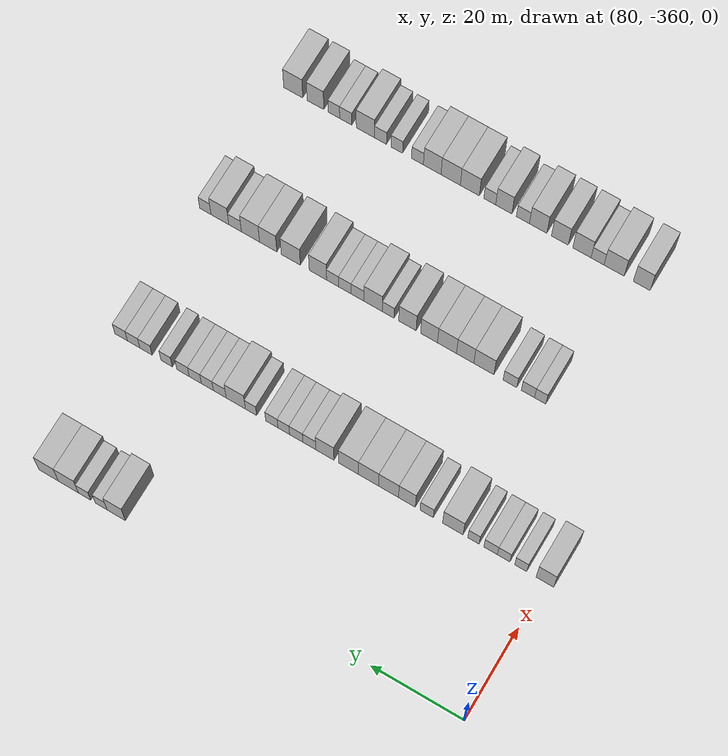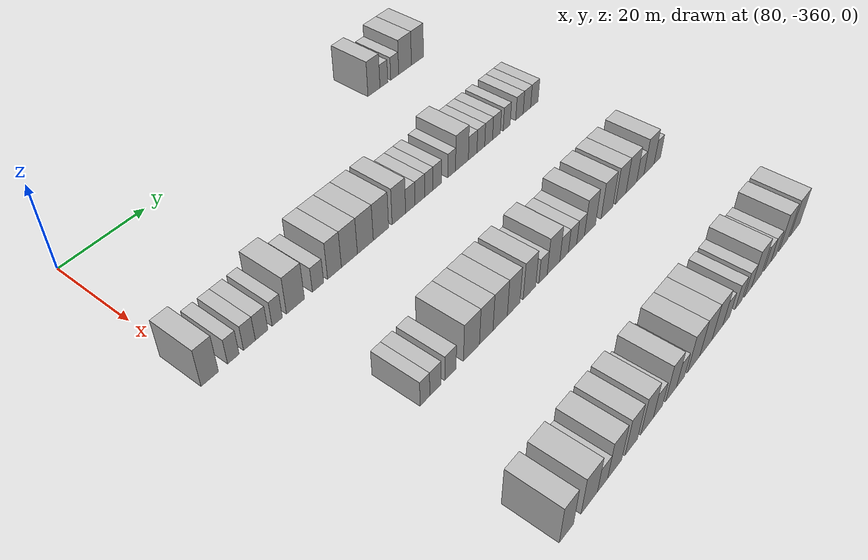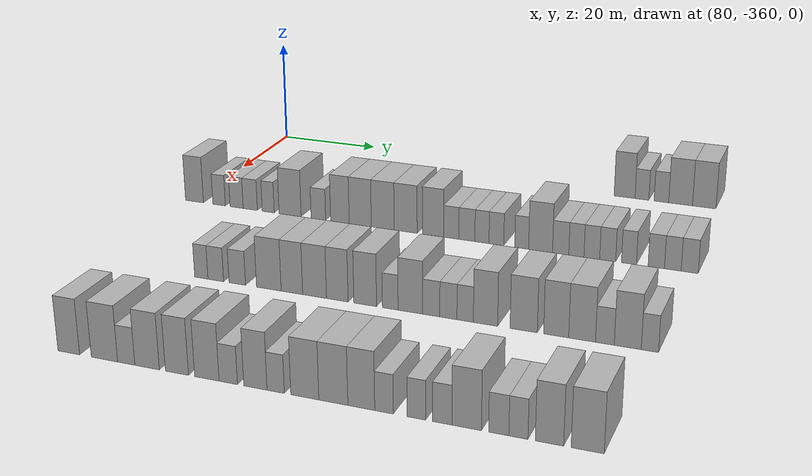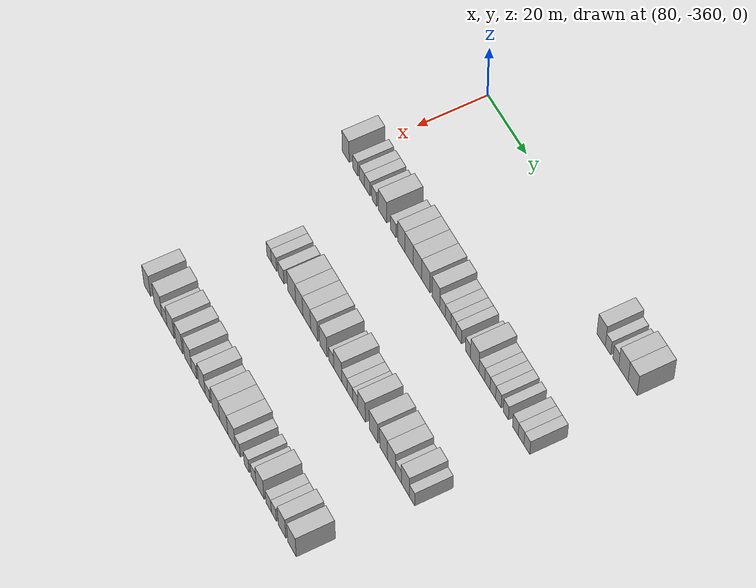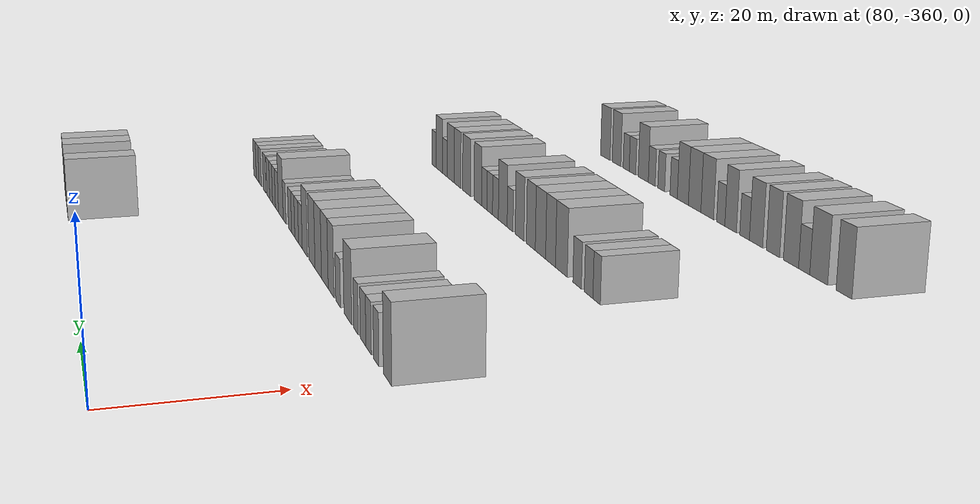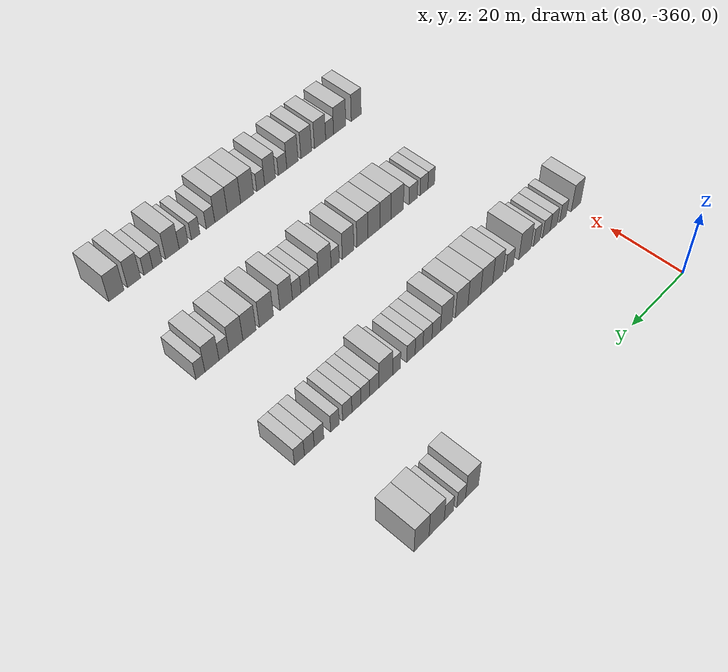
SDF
<sdf version="1.6">
 <world name="default">
  <model name="building_495">
   <static>1</static>
   <pose>85.0000 -284.6804 0 0.000000 0.000000 0.000000</pose>
   <link name="link">
    <pose>0 0 4.50 0 0 0</pose>
    <collision name="collision"><geometry><box><size>10.0000 4.0243 9.0000</size></box></geometry></collision>
    <visual name="visual">
     <cast_shadows>0</cast_shadows>
     <geometry><box><size>10.0000 4.0243 9.0000</size></box></geometry>
     <material>
      <script>
       <uri>model://HANNAS_wall/materials/scripts</uri>
       <uri>model://HANNAS_wall/materials/textures</uri>
       <name>vrc/HANNAS_wall</name>
      </script>
     </material>
    </visual>
   </link>
  </model>
  <model name="building_496">
   <static>1</static>
   <pose>85.0000 -281.3502 0 0.000000 0.000000 0.000000</pose>
   <link name="link">
    <pose>0 0 3.00 0 0 0</pose>
    <collision name="collision"><geometry><box><size>10.0000 2.6359 6.0000</size></box></geometry></collision>
    <visual name="visual">
     <cast_shadows>0</cast_shadows>
     <geometry><box><size>10.0000 2.6359 6.0000</size></box></geometry>
     <material>
      <script>
       <uri>model://HANNAS_wall/materials/scripts</uri>
       <uri>model://HANNAS_wall/materials/textures</uri>
       <name>vrc/HANNAS_wall</name>
      </script>
     </material>
    </visual>
   </link>
  </model>
  <model name="building_497">
   <static>1</static>
   <pose>85.0000 -277.6531 0 0.000000 0.000000 0.000000</pose>
   <link name="link">
    <pose>0 0 3.00 0 0 0</pose>
    <collision name="collision"><geometry><box><size>10.0000 2.7583 6.0000</size></box></geometry></collision>
    <visual name="visual">
     <cast_shadows>0</cast_shadows>
     <geometry><box><size>10.0000 2.7583 6.0000</size></box></geometry>
     <material>
      <script>
       <uri>model://HANNAS_wall/materials/scripts</uri>
       <uri>model://HANNAS_wall/materials/textures</uri>
       <name>vrc/HANNAS_wall</name>
      </script>
     </material>
    </visual>
   </link>
  </model>
  <model name="building_498">
   <static>1</static>
   <pose>85.0000 -274.0389 0 0.000000 0.000000 0.000000</pose>
   <link name="link">
    <pose>0 0 4.50 0 0 0</pose>
    <collision name="collision"><geometry><box><size>10.0000 4.4701 9.0000</size></box></geometry></collision>
    <visual name="visual">
     <cast_shadows>0</cast_shadows>
     <geometry><box><size>10.0000 4.4701 9.0000</size></box></geometry>
     <material>
      <script>
       <uri>model://HANNAS_wall/materials/scripts</uri>
       <uri>model://HANNAS_wall/materials/textures</uri>
       <name>vrc/HANNAS_wall</name>
      </script>
     </material>
    </visual>
   </link>
  </model>
  <model name="building_499">
   <static>1</static>
   <pose>85.0000 -269.6318 0 0.000000 0.000000 0.000000</pose>
   <link name="link">
    <pose>0 0 4.50 0 0 0</pose>
    <collision name="collision"><geometry><box><size>10.0000 4.3442 9.0000</size></box></geometry></collision>
    <visual name="visual">
     <cast_shadows>0</cast_shadows>
     <geometry><box><size>10.0000 4.3442 9.0000</size></box></geometry>
     <material>
      <script>
       <uri>model://HANNAS_wall/materials/scripts</uri>
       <uri>model://HANNAS_wall/materials/textures</uri>
       <name>vrc/HANNAS_wall</name>
      </script>
     </material>
    </visual>
   </link>
  </model>
  <model name="building_704">
   <static>1</static>
   <pose>115.0000 -359.9059 0 0.000000 0.000000 0.000000</pose>
   <link name="link">
    <pose>0 0 4.50 0 0 0</pose>
    <collision name="collision"><geometry><box><size>10.0000 3.7793 9.0000</size></box></geometry></collision>
    <visual name="visual">
     <cast_shadows>0</cast_shadows>
     <geometry><box><size>10.0000 3.7793 9.0000</size></box></geometry>
     <material>
      <script>
       <uri>model://HANNAS_wall/materials/scripts</uri>
       <uri>model://HANNAS_wall/materials/textures</uri>
       <name>vrc/HANNAS_wall</name>
      </script>
     </material>
    </visual>
   </link>
  </model>
  <model name="building_705">
   <static>1</static>
   <pose>115.0000 -354.7191 0 0.000000 0.000000 0.000000</pose>
   <link name="link">
    <pose>0 0 3.00 0 0 0</pose>
    <collision name="collision"><geometry><box><size>10.0000 2.5943 6.0000</size></box></geometry></collision>
    <visual name="visual">
     <cast_shadows>0</cast_shadows>
     <geometry><box><size>10.0000 2.5943 6.0000</size></box></geometry>
     <material>
      <script>
       <uri>model://HANNAS_wall/materials/scripts</uri>
       <uri>model://HANNAS_wall/materials/textures</uri>
       <name>vrc/HANNAS_wall</name>
      </script>
     </material>
    </visual>
   </link>
  </model>
  <model name="building_706">
   <static>1</static>
   <pose>115.0000 -351.0671 0 0.000000 0.000000 0.000000</pose>
   <link name="link">
    <pose>0 0 3.00 0 0 0</pose>
    <collision name="collision"><geometry><box><size>10.0000 2.7098 6.0000</size></box></geometry></collision>
    <visual name="visual">
     <cast_shadows>0</cast_shadows>
     <geometry><box><size>10.0000 2.7098 6.0000</size></box></geometry>
     <material>
      <script>
       <uri>model://HANNAS_wall/materials/scripts</uri>
       <uri>model://HANNAS_wall/materials/textures</uri>
       <name>vrc/HANNAS_wall</name>
      </script>
     </material>
    </visual>
   </link>
  </model>
  <model name="building_707">
   <static>1</static>
   <pose>115.0000 -348.2497 0 0.000000 0.000000 0.000000</pose>
   <link name="link">
    <pose>0 0 3.00 0 0 0</pose>
    <collision name="collision"><geometry><box><size>10.0000 2.9250 6.0000</size></box></geometry></collision>
    <visual name="visual">
     <cast_shadows>0</cast_shadows>
     <geometry><box><size>10.0000 2.9250 6.0000</size></box></geometry>
     <material>
      <script>
       <uri>model://HANNAS_wall/materials/scripts</uri>
       <uri>model://HANNAS_wall/materials/textures</uri>
       <name>vrc/HANNAS_wall</name>
      </script>
     </material>
    </visual>
   </link>
  </model>
  <model name="building_708">
   <static>1</static>
   <pose>115.0000 -344.5595 0 0.000000 0.000000 0.000000</pose>
   <link name="link">
    <pose>0 0 3.00 0 0 0</pose>
    <collision name="collision"><geometry><box><size>10.0000 2.4555 6.0000</size></box></geometry></collision>
    <visual name="visual">
     <cast_shadows>0</cast_shadows>
     <geometry><box><size>10.0000 2.4555 6.0000</size></box></geometry>
     <material>
      <script>
       <uri>model://HANNAS_wall/materials/scripts</uri>
       <uri>model://HANNAS_wall/materials/textures</uri>
       <name>vrc/HANNAS_wall</name>
      </script>
     </material>
    </visual>
   </link>
  </model>
  <model name="building_709">
   <static>1</static>
   <pose>115.0000 -340.1063 0 0.000000 0.000000 0.000000</pose>
   <link name="link">
    <pose>0 0 4.50 0 0 0</pose>
    <collision name="collision"><geometry><box><size>10.0000 4.4509 9.0000</size></box></geometry></collision>
    <visual name="visual">
     <cast_shadows>0</cast_shadows>
     <geometry><box><size>10.0000 4.4509 9.0000</size></box></geometry>
     <material>
      <script>
       <uri>model://HANNAS_wall/materials/scripts</uri>
       <uri>model://HANNAS_wall/materials/textures</uri>
       <name>vrc/HANNAS_wall</name>
      </script>
     </material>
    </visual>
   </link>
  </model>
  <model name="building_710">
   <static>1</static>
   <pose>115.0000 -334.4318 0 0.000000 0.000000 0.000000</pose>
   <link name="link">
    <pose>0 0 3.00 0 0 0</pose>
    <collision name="collision"><geometry><box><size>10.0000 2.8983 6.0000</size></box></geometry></collision>
    <visual name="visual">
     <cast_shadows>0</cast_shadows>
     <geometry><box><size>10.0000 2.8983 6.0000</size></box></geometry>
     <material>
      <script>
       <uri>model://HANNAS_wall/materials/scripts</uri>
       <uri>model://HANNAS_wall/materials/textures</uri>
       <name>vrc/HANNAS_wall</name>
      </script>
     </material>
    </visual>
   </link>
  </model>
  <model name="building_711">
   <static>1</static>
   <pose>115.0000 -330.1557 0 0.000000 0.000000 0.000000</pose>
   <link name="link">
    <pose>0 0 4.50 0 0 0</pose>
    <collision name="collision"><geometry><box><size>10.0000 3.6538 9.0000</size></box></geometry></collision>
    <visual name="visual">
     <cast_shadows>0</cast_shadows>
     <geometry><box><size>10.0000 3.6538 9.0000</size></box></geometry>
     <material>
      <script>
       <uri>model://HANNAS_wall/materials/scripts</uri>
       <uri>model://HANNAS_wall/materials/textures</uri>
       <name>vrc/HANNAS_wall</name>
      </script>
     </material>
    </visual>
   </link>
  </model>
  <model name="building_712">
   <static>1</static>
   <pose>115.0000 -326.1679 0 0.000000 0.000000 0.000000</pose>
   <link name="link">
    <pose>0 0 4.50 0 0 0</pose>
    <collision name="collision"><geometry><box><size>10.0000 4.3219 9.0000</size></box></geometry></collision>
    <visual name="visual">
     <cast_shadows>0</cast_shadows>
     <geometry><box><size>10.0000 4.3219 9.0000</size></box></geometry>
     <material>
      <script>
       <uri>model://HANNAS_wall/materials/scripts</uri>
       <uri>model://HANNAS_wall/materials/textures</uri>
       <name>vrc/HANNAS_wall</name>
      </script>
     </material>
    </visual>
   </link>
  </model>
  <model name="building_713">
   <static>1</static>
   <pose>115.0000 -321.7997 0 0.000000 0.000000 0.000000</pose>
   <link name="link">
    <pose>0 0 4.50 0 0 0</pose>
    <collision name="collision"><geometry><box><size>10.0000 4.4145 9.0000</size></box></geometry></collision>
    <visual name="visual">
     <cast_shadows>0</cast_shadows>
     <geometry><box><size>10.0000 4.4145 9.0000</size></box></geometry>
     <material>
      <script>
       <uri>model://HANNAS_wall/materials/scripts</uri>
       <uri>model://HANNAS_wall/materials/textures</uri>
       <name>vrc/HANNAS_wall</name>
      </script>
     </material>
    </visual>
   </link>
  </model>
  <model name="building_714">
   <static>1</static>
   <pose>115.0000 -317.4049 0 0.000000 0.000000 0.000000</pose>
   <link name="link">
    <pose>0 0 4.50 0 0 0</pose>
    <collision name="collision"><geometry><box><size>10.0000 4.3752 9.0000</size></box></geometry></collision>
    <visual name="visual">
     <cast_shadows>0</cast_shadows>
     <geometry><box><size>10.0000 4.3752 9.0000</size></box></geometry>
     <material>
      <script>
       <uri>model://HANNAS_wall/materials/scripts</uri>
       <uri>model://HANNAS_wall/materials/textures</uri>
       <name>vrc/HANNAS_wall</name>
      </script>
     </material>
    </visual>
   </link>
  </model>
  <model name="building_715">
   <static>1</static>
   <pose>115.0000 -312.2226 0 0.000000 0.000000 0.000000</pose>
   <link name="link">
    <pose>0 0 4.50 0 0 0</pose>
    <collision name="collision"><geometry><box><size>10.0000 3.9893 9.0000</size></box></geometry></collision>
    <visual name="visual">
     <cast_shadows>0</cast_shadows>
     <geometry><box><size>10.0000 3.9893 9.0000</size></box></geometry>
     <material>
      <script>
       <uri>model://HANNAS_wall/materials/scripts</uri>
       <uri>model://HANNAS_wall/materials/textures</uri>
       <name>vrc/HANNAS_wall</name>
      </script>
     </material>
    </visual>
   </link>
  </model>
  <model name="building_716">
   <static>1</static>
   <pose>115.0000 -308.8053 0 0.000000 0.000000 0.000000</pose>
   <link name="link">
    <pose>0 0 3.00 0 0 0</pose>
    <collision name="collision"><geometry><box><size>10.0000 2.8454 6.0000</size></box></geometry></collision>
    <visual name="visual">
     <cast_shadows>0</cast_shadows>
     <geometry><box><size>10.0000 2.8454 6.0000</size></box></geometry>
     <material>
      <script>
       <uri>model://HANNAS_wall/materials/scripts</uri>
       <uri>model://HANNAS_wall/materials/textures</uri>
       <name>vrc/HANNAS_wall</name>
      </script>
     </material>
    </visual>
   </link>
  </model>
  <model name="building_717">
   <static>1</static>
   <pose>115.0000 -305.8995 0 0.000000 0.000000 0.000000</pose>
   <link name="link">
    <pose>0 0 3.00 0 0 0</pose>
    <collision name="collision"><geometry><box><size>10.0000 2.9662 6.0000</size></box></geometry></collision>
    <visual name="visual">
     <cast_shadows>0</cast_shadows>
     <geometry><box><size>10.0000 2.9662 6.0000</size></box></geometry>
     <material>
      <script>
       <uri>model://HANNAS_wall/materials/scripts</uri>
       <uri>model://HANNAS_wall/materials/textures</uri>
       <name>vrc/HANNAS_wall</name>
      </script>
     </material>
    </visual>
   </link>
  </model>
  <model name="building_718">
   <static>1</static>
   <pose>115.0000 -303.1260 0 0.000000 0.000000 0.000000</pose>
   <link name="link">
    <pose>0 0 3.00 0 0 0</pose>
    <collision name="collision"><geometry><box><size>10.0000 2.5808 6.0000</size></box></geometry></collision>
    <visual name="visual">
     <cast_shadows>0</cast_shadows>
     <geometry><box><size>10.0000 2.5808 6.0000</size></box></geometry>
     <material>
      <script>
       <uri>model://HANNAS_wall/materials/scripts</uri>
       <uri>model://HANNAS_wall/materials/textures</uri>
       <name>vrc/HANNAS_wall</name>
      </script>
     </material>
    </visual>
   </link>
  </model>
  <model name="building_719">
   <static>1</static>
   <pose>115.0000 -300.4857 0 0.000000 0.000000 0.000000</pose>
   <link name="link">
    <pose>0 0 3.00 0 0 0</pose>
    <collision name="collision"><geometry><box><size>10.0000 2.6998 6.0000</size></box></geometry></collision>
    <visual name="visual">
     <cast_shadows>0</cast_shadows>
     <geometry><box><size>10.0000 2.6998 6.0000</size></box></geometry>
     <material>
      <script>
       <uri>model://HANNAS_wall/materials/scripts</uri>
       <uri>model://HANNAS_wall/materials/textures</uri>
       <name>vrc/HANNAS_wall</name>
      </script>
     </material>
    </visual>
   </link>
  </model>
  <model name="building_720">
   <static>1</static>
   <pose>115.0000 -295.8877 0 0.000000 0.000000 0.000000</pose>
   <link name="link">
    <pose>0 0 3.00 0 0 0</pose>
    <collision name="collision"><geometry><box><size>10.0000 2.4961 6.0000</size></box></geometry></collision>
    <visual name="visual">
     <cast_shadows>0</cast_shadows>
     <geometry><box><size>10.0000 2.4961 6.0000</size></box></geometry>
     <material>
      <script>
       <uri>model://HANNAS_wall/materials/scripts</uri>
       <uri>model://HANNAS_wall/materials/textures</uri>
       <name>vrc/HANNAS_wall</name>
      </script>
     </material>
    </visual>
   </link>
  </model>
  <model name="building_721">
   <static>1</static>
   <pose>115.0000 -292.5048 0 0.000000 0.000000 0.000000</pose>
   <link name="link">
    <pose>0 0 4.50 0 0 0</pose>
    <collision name="collision"><geometry><box><size>10.0000 4.2696 9.0000</size></box></geometry></collision>
    <visual name="visual">
     <cast_shadows>0</cast_shadows>
     <geometry><box><size>10.0000 4.2696 9.0000</size></box></geometry>
     <material>
      <script>
       <uri>model://HANNAS_wall/materials/scripts</uri>
       <uri>model://HANNAS_wall/materials/textures</uri>
       <name>vrc/HANNAS_wall</name>
      </script>
     </material>
    </visual>
   </link>
  </model>
  <model name="building_722">
   <static>1</static>
   <pose>115.0000 -288.9304 0 0.000000 0.000000 0.000000</pose>
   <link name="link">
    <pose>0 0 3.00 0 0 0</pose>
    <collision name="collision"><geometry><box><size>10.0000 2.8792 6.0000</size></box></geometry></collision>
    <visual name="visual">
     <cast_shadows>0</cast_shadows>
     <geometry><box><size>10.0000 2.8792 6.0000</size></box></geometry>
     <material>
      <script>
       <uri>model://HANNAS_wall/materials/scripts</uri>
       <uri>model://HANNAS_wall/materials/textures</uri>
       <name>vrc/HANNAS_wall</name>
      </script>
     </material>
    </visual>
   </link>
  </model>
  <model name="building_723">
   <static>1</static>
   <pose>115.0000 -286.1569 0 0.000000 0.000000 0.000000</pose>
   <link name="link">
    <pose>0 0 3.00 0 0 0</pose>
    <collision name="collision"><geometry><box><size>10.0000 2.6676 6.0000</size></box></geometry></collision>
    <visual name="visual">
     <cast_shadows>0</cast_shadows>
     <geometry><box><size>10.0000 2.6676 6.0000</size></box></geometry>
     <material>
      <script>
       <uri>model://HANNAS_wall/materials/scripts</uri>
       <uri>model://HANNAS_wall/materials/textures</uri>
       <name>vrc/HANNAS_wall</name>
      </script>
     </material>
    </visual>
   </link>
  </model>
  <model name="building_724">
   <static>1</static>
   <pose>115.0000 -283.4551 0 0.000000 0.000000 0.000000</pose>
   <link name="link">
    <pose>0 0 3.00 0 0 0</pose>
    <collision name="collision"><geometry><box><size>10.0000 2.7359 6.0000</size></box></geometry></collision>
    <visual name="visual">
     <cast_shadows>0</cast_shadows>
     <geometry><box><size>10.0000 2.7359 6.0000</size></box></geometry>
     <material>
      <script>
       <uri>model://HANNAS_wall/materials/scripts</uri>
       <uri>model://HANNAS_wall/materials/textures</uri>
       <name>vrc/HANNAS_wall</name>
      </script>
     </material>
    </visual>
   </link>
  </model>
  <model name="building_725">
   <static>1</static>
   <pose>115.0000 -280.7016 0 0.000000 0.000000 0.000000</pose>
   <link name="link">
    <pose>0 0 3.00 0 0 0</pose>
    <collision name="collision"><geometry><box><size>10.0000 2.7712 6.0000</size></box></geometry></collision>
    <visual name="visual">
     <cast_shadows>0</cast_shadows>
     <geometry><box><size>10.0000 2.7712 6.0000</size></box></geometry>
     <material>
      <script>
       <uri>model://HANNAS_wall/materials/scripts</uri>
       <uri>model://HANNAS_wall/materials/textures</uri>
       <name>vrc/HANNAS_wall</name>
      </script>
     </material>
    </visual>
   </link>
  </model>
  <model name="building_726">
   <static>1</static>
   <pose>115.0000 -277.0410 0 0.000000 0.000000 0.000000</pose>
   <link name="link">
    <pose>0 0 3.00 0 0 0</pose>
    <collision name="collision"><geometry><box><size>10.0000 2.5501 6.0000</size></box></geometry></collision>
    <visual name="visual">
     <cast_shadows>0</cast_shadows>
     <geometry><box><size>10.0000 2.5501 6.0000</size></box></geometry>
     <material>
      <script>
       <uri>model://HANNAS_wall/materials/scripts</uri>
       <uri>model://HANNAS_wall/materials/textures</uri>
       <name>vrc/HANNAS_wall</name>
      </script>
     </material>
    </visual>
   </link>
  </model>
  <model name="building_727">
   <static>1</static>
   <pose>115.0000 -272.3829 0 0.000000 0.000000 0.000000</pose>
   <link name="link">
    <pose>0 0 3.00 0 0 0</pose>
    <collision name="collision"><geometry><box><size>10.0000 2.7660 6.0000</size></box></geometry></collision>
    <visual name="visual">
     <cast_shadows>0</cast_shadows>
     <geometry><box><size>10.0000 2.7660 6.0000</size></box></geometry>
     <material>
      <script>
       <uri>model://HANNAS_wall/materials/scripts</uri>
       <uri>model://HANNAS_wall/materials/textures</uri>
       <name>vrc/HANNAS_wall</name>
      </script>
     </material>
    </visual>
   </link>
  </model>
  <model name="building_728">
   <static>1</static>
   <pose>115.0000 -269.5935 0 0.000000 0.000000 0.000000</pose>
   <link name="link">
    <pose>0 0 3.00 0 0 0</pose>
    <collision name="collision"><geometry><box><size>10.0000 2.8128 6.0000</size></box></geometry></collision>
    <visual name="visual">
     <cast_shadows>0</cast_shadows>
     <geometry><box><size>10.0000 2.8128 6.0000</size></box></geometry>
     <material>
      <script>
       <uri>model://HANNAS_wall/materials/scripts</uri>
       <uri>model://HANNAS_wall/materials/textures</uri>
       <name>vrc/HANNAS_wall</name>
      </script>
     </material>
    </visual>
   </link>
  </model>
  <model name="building_729">
   <static>1</static>
   <pose>115.0000 -266.7671 0 0.000000 0.000000 0.000000</pose>
   <link name="link">
    <pose>0 0 3.00 0 0 0</pose>
    <collision name="collision"><geometry><box><size>10.0000 2.8401 6.0000</size></box></geometry></collision>
    <visual name="visual">
     <cast_shadows>0</cast_shadows>
     <geometry><box><size>10.0000 2.8401 6.0000</size></box></geometry>
     <material>
      <script>
       <uri>model://HANNAS_wall/materials/scripts</uri>
       <uri>model://HANNAS_wall/materials/textures</uri>
       <name>vrc/HANNAS_wall</name>
      </script>
     </material>
    </visual>
   </link>
  </model>
  <model name="building_944">
   <static>1</static>
   <pose>145.0000 -341.8268 0 0.000000 0.000000 0.000000</pose>
   <link name="link">
    <pose>0 0 3.00 0 0 0</pose>
    <collision name="collision"><geometry><box><size>10.0000 2.4540 6.0000</size></box></geometry></collision>
    <visual name="visual">
     <cast_shadows>0</cast_shadows>
     <geometry><box><size>10.0000 2.4540 6.0000</size></box></geometry>
     <material>
      <script>
       <uri>model://HANNAS_wall/materials/scripts</uri>
       <uri>model://HANNAS_wall/materials/textures</uri>
       <name>vrc/HANNAS_wall</name>
      </script>
     </material>
    </visual>
   </link>
  </model>
  <model name="building_945">
   <static>1</static>
   <pose>145.0000 -339.1513 0 0.000000 0.000000 0.000000</pose>
   <link name="link">
    <pose>0 0 3.00 0 0 0</pose>
    <collision name="collision"><geometry><box><size>10.0000 2.8970 6.0000</size></box></geometry></collision>
    <visual name="visual">
     <cast_shadows>0</cast_shadows>
     <geometry><box><size>10.0000 2.8970 6.0000</size></box></geometry>
     <material>
      <script>
       <uri>model://HANNAS_wall/materials/scripts</uri>
       <uri>model://HANNAS_wall/materials/textures</uri>
       <name>vrc/HANNAS_wall</name>
      </script>
     </material>
    </visual>
   </link>
  </model>
  <model name="building_946">
   <static>1</static>
   <pose>145.0000 -335.2034 0 0.000000 0.000000 0.000000</pose>
   <link name="link">
    <pose>0 0 3.00 0 0 0</pose>
    <collision name="collision"><geometry><box><size>10.0000 2.9986 6.0000</size></box></geometry></collision>
    <visual name="visual">
     <cast_shadows>0</cast_shadows>
     <geometry><box><size>10.0000 2.9986 6.0000</size></box></geometry>
     <material>
      <script>
       <uri>model://HANNAS_wall/materials/scripts</uri>
       <uri>model://HANNAS_wall/materials/textures</uri>
       <name>vrc/HANNAS_wall</name>
      </script>
     </material>
    </visual>
   </link>
  </model>
  <model name="building_947">
   <static>1</static>
   <pose>145.0000 -329.4924 0 0.000000 0.000000 0.000000</pose>
   <link name="link">
    <pose>0 0 4.50 0 0 0</pose>
    <collision name="collision"><geometry><box><size>10.0000 4.4235 9.0000</size></box></geometry></collision>
    <visual name="visual">
     <cast_shadows>0</cast_shadows>
     <geometry><box><size>10.0000 4.4235 9.0000</size></box></geometry>
     <material>
      <script>
       <uri>model://HANNAS_wall/materials/scripts</uri>
       <uri>model://HANNAS_wall/materials/textures</uri>
       <name>vrc/HANNAS_wall</name>
      </script>
     </material>
    </visual>
   </link>
  </model>
  <model name="building_948">
   <static>1</static>
   <pose>145.0000 -325.3663 0 0.000000 0.000000 0.000000</pose>
   <link name="link">
    <pose>0 0 4.50 0 0 0</pose>
    <collision name="collision"><geometry><box><size>10.0000 3.8286 9.0000</size></box></geometry></collision>
    <visual name="visual">
     <cast_shadows>0</cast_shadows>
     <geometry><box><size>10.0000 3.8286 9.0000</size></box></geometry>
     <material>
      <script>
       <uri>model://HANNAS_wall/materials/scripts</uri>
       <uri>model://HANNAS_wall/materials/textures</uri>
       <name>vrc/HANNAS_wall</name>
      </script>
     </material>
    </visual>
   </link>
  </model>
  <model name="building_949">
   <static>1</static>
   <pose>145.0000 -321.3636 0 0.000000 0.000000 0.000000</pose>
   <link name="link">
    <pose>0 0 4.50 0 0 0</pose>
    <collision name="collision"><geometry><box><size>10.0000 4.1767 9.0000</size></box></geometry></collision>
    <visual name="visual">
     <cast_shadows>0</cast_shadows>
     <geometry><box><size>10.0000 4.1767 9.0000</size></box></geometry>
     <material>
      <script>
       <uri>model://HANNAS_wall/materials/scripts</uri>
       <uri>model://HANNAS_wall/materials/textures</uri>
       <name>vrc/HANNAS_wall</name>
      </script>
     </material>
    </visual>
   </link>
  </model>
  <model name="building_950">
   <static>1</static>
   <pose>145.0000 -317.3990 0 0.000000 0.000000 0.000000</pose>
   <link name="link">
    <pose>0 0 4.50 0 0 0</pose>
    <collision name="collision"><geometry><box><size>10.0000 3.7527 9.0000</size></box></geometry></collision>
    <visual name="visual">
     <cast_shadows>0</cast_shadows>
     <geometry><box><size>10.0000 3.7527 9.0000</size></box></geometry>
     <material>
      <script>
       <uri>model://HANNAS_wall/materials/scripts</uri>
       <uri>model://HANNAS_wall/materials/textures</uri>
       <name>vrc/HANNAS_wall</name>
      </script>
     </material>
    </visual>
   </link>
  </model>
  <model name="building_951">
   <static>1</static>
   <pose>145.0000 -312.5853 0 0.000000 0.000000 0.000000</pose>
   <link name="link">
    <pose>0 0 4.50 0 0 0</pose>
    <collision name="collision"><geometry><box><size>10.0000 3.8747 9.0000</size></box></geometry></collision>
    <visual name="visual">
     <cast_shadows>0</cast_shadows>
     <geometry><box><size>10.0000 3.8747 9.0000</size></box></geometry>
     <material>
      <script>
       <uri>model://HANNAS_wall/materials/scripts</uri>
       <uri>model://HANNAS_wall/materials/textures</uri>
       <name>vrc/HANNAS_wall</name>
      </script>
     </material>
    </visual>
   </link>
  </model>
  <model name="building_952">
   <static>1</static>
   <pose>145.0000 -308.3256 0 0.000000 0.000000 0.000000</pose>
   <link name="link">
    <pose>0 0 3.00 0 0 0</pose>
    <collision name="collision"><geometry><box><size>10.0000 2.6447 6.0000</size></box></geometry></collision>
    <visual name="visual">
     <cast_shadows>0</cast_shadows>
     <geometry><box><size>10.0000 2.6447 6.0000</size></box></geometry>
     <material>
      <script>
       <uri>model://HANNAS_wall/materials/scripts</uri>
       <uri>model://HANNAS_wall/materials/textures</uri>
       <name>vrc/HANNAS_wall</name>
      </script>
     </material>
    </visual>
   </link>
  </model>
  <model name="building_953">
   <static>1</static>
   <pose>145.0000 -304.9459 0 0.000000 0.000000 0.000000</pose>
   <link name="link">
    <pose>0 0 4.50 0 0 0</pose>
    <collision name="collision"><geometry><box><size>10.0000 4.1147 9.0000</size></box></geometry></collision>
    <visual name="visual">
     <cast_shadows>0</cast_shadows>
     <geometry><box><size>10.0000 4.1147 9.0000</size></box></geometry>
     <material>
      <script>
       <uri>model://HANNAS_wall/materials/scripts</uri>
       <uri>model://HANNAS_wall/materials/textures</uri>
       <name>vrc/HANNAS_wall</name>
      </script>
     </material>
    </visual>
   </link>
  </model>
  <model name="building_954">
   <static>1</static>
   <pose>145.0000 -301.4626 0 0.000000 0.000000 0.000000</pose>
   <link name="link">
    <pose>0 0 3.00 0 0 0</pose>
    <collision name="collision"><geometry><box><size>10.0000 2.8519 6.0000</size></box></geometry></collision>
    <visual name="visual">
     <cast_shadows>0</cast_shadows>
     <geometry><box><size>10.0000 2.8519 6.0000</size></box></geometry>
     <material>
      <script>
       <uri>model://HANNAS_wall/materials/scripts</uri>
       <uri>model://HANNAS_wall/materials/textures</uri>
       <name>vrc/HANNAS_wall</name>
      </script>
     </material>
    </visual>
   </link>
  </model>
  <model name="building_955">
   <static>1</static>
   <pose>145.0000 -298.6347 0 0.000000 0.000000 0.000000</pose>
   <link name="link">
    <pose>0 0 3.00 0 0 0</pose>
    <collision name="collision"><geometry><box><size>10.0000 2.8041 6.0000</size></box></geometry></collision>
    <visual name="visual">
     <cast_shadows>0</cast_shadows>
     <geometry><box><size>10.0000 2.8041 6.0000</size></box></geometry>
     <material>
      <script>
       <uri>model://HANNAS_wall/materials/scripts</uri>
       <uri>model://HANNAS_wall/materials/textures</uri>
       <name>vrc/HANNAS_wall</name>
      </script>
     </material>
    </visual>
   </link>
  </model>
  <model name="building_956">
   <static>1</static>
   <pose>145.0000 -295.8919 0 0.000000 0.000000 0.000000</pose>
   <link name="link">
    <pose>0 0 3.00 0 0 0</pose>
    <collision name="collision"><geometry><box><size>10.0000 2.6815 6.0000</size></box></geometry></collision>
    <visual name="visual">
     <cast_shadows>0</cast_shadows>
     <geometry><box><size>10.0000 2.6815 6.0000</size></box></geometry>
     <material>
      <script>
       <uri>model://HANNAS_wall/materials/scripts</uri>
       <uri>model://HANNAS_wall/materials/textures</uri>
       <name>vrc/HANNAS_wall</name>
      </script>
     </material>
    </visual>
   </link>
  </model>
  <model name="building_957">
   <static>1</static>
   <pose>145.0000 -292.5998 0 0.000000 0.000000 0.000000</pose>
   <link name="link">
    <pose>0 0 4.50 0 0 0</pose>
    <collision name="collision"><geometry><box><size>10.0000 3.9026 9.0000</size></box></geometry></collision>
    <visual name="visual">
     <cast_shadows>0</cast_shadows>
     <geometry><box><size>10.0000 3.9026 9.0000</size></box></geometry>
     <material>
      <script>
       <uri>model://HANNAS_wall/materials/scripts</uri>
       <uri>model://HANNAS_wall/materials/textures</uri>
       <name>vrc/HANNAS_wall</name>
      </script>
     </material>
    </visual>
   </link>
  </model>
  <model name="building_958">
   <static>1</static>
   <pose>145.0000 -286.4972 0 0.000000 0.000000 0.000000</pose>
   <link name="link">
    <pose>0 0 4.50 0 0 0</pose>
    <collision name="collision"><geometry><box><size>10.0000 4.3028 9.0000</size></box></geometry></collision>
    <visual name="visual">
     <cast_shadows>0</cast_shadows>
     <geometry><box><size>10.0000 4.3028 9.0000</size></box></geometry>
     <material>
      <script>
       <uri>model://HANNAS_wall/materials/scripts</uri>
       <uri>model://HANNAS_wall/materials/textures</uri>
       <name>vrc/HANNAS_wall</name>
      </script>
     </material>
    </visual>
   </link>
  </model>
  <model name="building_959">
   <static>1</static>
   <pose>145.0000 -281.3899 0 0.000000 0.000000 0.000000</pose>
   <link name="link">
    <pose>0 0 4.50 0 0 0</pose>
    <collision name="collision"><geometry><box><size>10.0000 3.9116 9.0000</size></box></geometry></collision>
    <visual name="visual">
     <cast_shadows>0</cast_shadows>
     <geometry><box><size>10.0000 3.9116 9.0000</size></box></geometry>
     <material>
      <script>
       <uri>model://HANNAS_wall/materials/scripts</uri>
       <uri>model://HANNAS_wall/materials/textures</uri>
       <name>vrc/HANNAS_wall</name>
      </script>
     </material>
    </visual>
   </link>
  </model>
  <model name="building_960">
   <static>1</static>
   <pose>145.0000 -277.3724 0 0.000000 0.000000 0.000000</pose>
   <link name="link">
    <pose>0 0 4.50 0 0 0</pose>
    <collision name="collision"><geometry><box><size>10.0000 4.1234 9.0000</size></box></geometry></collision>
    <visual name="visual">
     <cast_shadows>0</cast_shadows>
     <geometry><box><size>10.0000 4.1234 9.0000</size></box></geometry>
     <material>
      <script>
       <uri>model://HANNAS_wall/materials/scripts</uri>
       <uri>model://HANNAS_wall/materials/textures</uri>
       <name>vrc/HANNAS_wall</name>
      </script>
     </material>
    </visual>
   </link>
  </model>
  <model name="building_961">
   <static>1</static>
   <pose>145.0000 -273.8785 0 0.000000 0.000000 0.000000</pose>
   <link name="link">
    <pose>0 0 3.00 0 0 0</pose>
    <collision name="collision"><geometry><box><size>10.0000 2.8644 6.0000</size></box></geometry></collision>
    <visual name="visual">
     <cast_shadows>0</cast_shadows>
     <geometry><box><size>10.0000 2.8644 6.0000</size></box></geometry>
     <material>
      <script>
       <uri>model://HANNAS_wall/materials/scripts</uri>
       <uri>model://HANNAS_wall/materials/textures</uri>
       <name>vrc/HANNAS_wall</name>
      </script>
     </material>
    </visual>
   </link>
  </model>
  <model name="building_962">
   <static>1</static>
   <pose>145.0000 -270.4138 0 0.000000 0.000000 0.000000</pose>
   <link name="link">
    <pose>0 0 4.50 0 0 0</pose>
    <collision name="collision"><geometry><box><size>10.0000 4.0650 9.0000</size></box></geometry></collision>
    <visual name="visual">
     <cast_shadows>0</cast_shadows>
     <geometry><box><size>10.0000 4.0650 9.0000</size></box></geometry>
     <material>
      <script>
       <uri>model://HANNAS_wall/materials/scripts</uri>
       <uri>model://HANNAS_wall/materials/textures</uri>
       <name>vrc/HANNAS_wall</name>
      </script>
     </material>
    </visual>
   </link>
  </model>
  <model name="building_963">
   <static>1</static>
   <pose>145.0000 -267.0906 0 0.000000 0.000000 0.000000</pose>
   <link name="link">
    <pose>0 0 3.00 0 0 0</pose>
    <collision name="collision"><geometry><box><size>10.0000 2.5813 6.0000</size></box></geometry></collision>
    <visual name="visual">
     <cast_shadows>0</cast_shadows>
     <geometry><box><size>10.0000 2.5813 6.0000</size></box></geometry>
     <material>
      <script>
       <uri>model://HANNAS_wall/materials/scripts</uri>
       <uri>model://HANNAS_wall/materials/textures</uri>
       <name>vrc/HANNAS_wall</name>
      </script>
     </material>
    </visual>
   </link>
  </model>
  <model name="building_1168">
   <static>1</static>
   <pose>175.0000 -347.2196 0 0.000000 0.000000 0.000000</pose>
   <link name="link">
    <pose>0 0 4.50 0 0 0</pose>
    <collision name="collision"><geometry><box><size>10.0000 3.7101 9.0000</size></box></geometry></collision>
    <visual name="visual">
     <cast_shadows>0</cast_shadows>
     <geometry><box><size>10.0000 3.7101 9.0000</size></box></geometry>
     <material>
      <script>
       <uri>model://HANNAS_wall/materials/scripts</uri>
       <uri>model://HANNAS_wall/materials/textures</uri>
       <name>vrc/HANNAS_wall</name>
      </script>
     </material>
    </visual>
   </link>
  </model>
  <model name="building_1169">
   <static>1</static>
   <pose>175.0000 -341.1380 0 0.000000 0.000000 0.000000</pose>
   <link name="link">
    <pose>0 0 4.50 0 0 0</pose>
    <collision name="collision"><geometry><box><size>10.0000 4.4530 9.0000</size></box></geometry></collision>
    <visual name="visual">
     <cast_shadows>0</cast_shadows>
     <geometry><box><size>10.0000 4.4530 9.0000</size></box></geometry>
     <material>
      <script>
       <uri>model://HANNAS_wall/materials/scripts</uri>
       <uri>model://HANNAS_wall/materials/textures</uri>
       <name>vrc/HANNAS_wall</name>
      </script>
     </material>
    </visual>
   </link>
  </model>
  <model name="building_1170">
   <static>1</static>
   <pose>175.0000 -337.4793 0 0.000000 0.000000 0.000000</pose>
   <link name="link">
    <pose>0 0 3.00 0 0 0</pose>
    <collision name="collision"><geometry><box><size>10.0000 2.8645 6.0000</size></box></geometry></collision>
    <visual name="visual">
     <cast_shadows>0</cast_shadows>
     <geometry><box><size>10.0000 2.8645 6.0000</size></box></geometry>
     <material>
      <script>
       <uri>model://HANNAS_wall/materials/scripts</uri>
       <uri>model://HANNAS_wall/materials/textures</uri>
       <name>vrc/HANNAS_wall</name>
      </script>
     </material>
    </visual>
   </link>
  </model>
  <model name="building_1171">
   <static>1</static>
   <pose>175.0000 -334.0237 0 0.000000 0.000000 0.000000</pose>
   <link name="link">
    <pose>0 0 4.50 0 0 0</pose>
    <collision name="collision"><geometry><box><size>10.0000 4.0467 9.0000</size></box></geometry></collision>
    <visual name="visual">
     <cast_shadows>0</cast_shadows>
     <geometry><box><size>10.0000 4.0467 9.0000</size></box></geometry>
     <material>
      <script>
       <uri>model://HANNAS_wall/materials/scripts</uri>
       <uri>model://HANNAS_wall/materials/textures</uri>
       <name>vrc/HANNAS_wall</name>
      </script>
     </material>
    </visual>
   </link>
  </model>
  <model name="building_1172">
   <static>1</static>
   <pose>175.0000 -329.1266 0 0.000000 0.000000 0.000000</pose>
   <link name="link">
    <pose>0 0 4.50 0 0 0</pose>
    <collision name="collision"><geometry><box><size>10.0000 3.7475 9.0000</size></box></geometry></collision>
    <visual name="visual">
     <cast_shadows>0</cast_shadows>
     <geometry><box><size>10.0000 3.7475 9.0000</size></box></geometry>
     <material>
      <script>
       <uri>model://HANNAS_wall/materials/scripts</uri>
       <uri>model://HANNAS_wall/materials/textures</uri>
       <name>vrc/HANNAS_wall</name>
      </script>
     </material>
    </visual>
   </link>
  </model>
  <model name="building_1173">
   <static>1</static>
   <pose>175.0000 -324.3045 0 0.000000 0.000000 0.000000</pose>
   <link name="link">
    <pose>0 0 4.50 0 0 0</pose>
    <collision name="collision"><geometry><box><size>10.0000 3.8968 9.0000</size></box></geometry></collision>
    <visual name="visual">
     <cast_shadows>0</cast_shadows>
     <geometry><box><size>10.0000 3.8968 9.0000</size></box></geometry>
     <material>
      <script>
       <uri>model://HANNAS_wall/materials/scripts</uri>
       <uri>model://HANNAS_wall/materials/textures</uri>
       <name>vrc/HANNAS_wall</name>
      </script>
     </material>
    </visual>
   </link>
  </model>
  <model name="building_1174">
   <static>1</static>
   <pose>175.0000 -320.8995 0 0.000000 0.000000 0.000000</pose>
   <link name="link">
    <pose>0 0 3.00 0 0 0</pose>
    <collision name="collision"><geometry><box><size>10.0000 2.9132 6.0000</size></box></geometry></collision>
    <visual name="visual">
     <cast_shadows>0</cast_shadows>
     <geometry><box><size>10.0000 2.9132 6.0000</size></box></geometry>
     <material>
      <script>
       <uri>model://HANNAS_wall/materials/scripts</uri>
       <uri>model://HANNAS_wall/materials/textures</uri>
       <name>vrc/HANNAS_wall</name>
      </script>
     </material>
    </visual>
   </link>
  </model>
  <model name="building_1175">
   <static>1</static>
   <pose>175.0000 -316.6289 0 0.000000 0.000000 0.000000</pose>
   <link name="link">
    <pose>0 0 4.50 0 0 0</pose>
    <collision name="collision"><geometry><box><size>10.0000 3.6280 9.0000</size></box></geometry></collision>
    <visual name="visual">
     <cast_shadows>0</cast_shadows>
     <geometry><box><size>10.0000 3.6280 9.0000</size></box></geometry>
     <material>
      <script>
       <uri>model://HANNAS_wall/materials/scripts</uri>
       <uri>model://HANNAS_wall/materials/textures</uri>
       <name>vrc/HANNAS_wall</name>
      </script>
     </material>
    </visual>
   </link>
  </model>
  <model name="building_1176">
   <static>1</static>
   <pose>175.0000 -313.4870 0 0.000000 0.000000 0.000000</pose>
   <link name="link">
    <pose>0 0 3.00 0 0 0</pose>
    <collision name="collision"><geometry><box><size>10.0000 2.6558 6.0000</size></box></geometry></collision>
    <visual name="visual">
     <cast_shadows>0</cast_shadows>
     <geometry><box><size>10.0000 2.6558 6.0000</size></box></geometry>
     <material>
      <script>
       <uri>model://HANNAS_wall/materials/scripts</uri>
       <uri>model://HANNAS_wall/materials/textures</uri>
       <name>vrc/HANNAS_wall</name>
      </script>
     </material>
    </visual>
   </link>
  </model>
  <model name="building_1177">
   <static>1</static>
   <pose>175.0000 -309.0258 0 0.000000 0.000000 0.000000</pose>
   <link name="link">
    <pose>0 0 4.50 0 0 0</pose>
    <collision name="collision"><geometry><box><size>10.0000 4.2666 9.0000</size></box></geometry></collision>
    <visual name="visual">
     <cast_shadows>0</cast_shadows>
     <geometry><box><size>10.0000 4.2666 9.0000</size></box></geometry>
     <material>
      <script>
       <uri>model://HANNAS_wall/materials/scripts</uri>
       <uri>model://HANNAS_wall/materials/textures</uri>
       <name>vrc/HANNAS_wall</name>
      </script>
     </material>
    </visual>
   </link>
  </model>
  <model name="building_1178">
   <static>1</static>
   <pose>175.0000 -304.7132 0 0.000000 0.000000 0.000000</pose>
   <link name="link">
    <pose>0 0 4.50 0 0 0</pose>
    <collision name="collision"><geometry><box><size>10.0000 4.3586 9.0000</size></box></geometry></collision>
    <visual name="visual">
     <cast_shadows>0</cast_shadows>
     <geometry><box><size>10.0000 4.3586 9.0000</size></box></geometry>
     <material>
      <script>
       <uri>model://HANNAS_wall/materials/scripts</uri>
       <uri>model://HANNAS_wall/materials/textures</uri>
       <name>vrc/HANNAS_wall</name>
      </script>
     </material>
    </visual>
   </link>
  </model>
  <model name="building_1179">
   <static>1</static>
   <pose>175.0000 -300.5426 0 0.000000 0.000000 0.000000</pose>
   <link name="link">
    <pose>0 0 4.50 0 0 0</pose>
    <collision name="collision"><geometry><box><size>10.0000 3.9827 9.0000</size></box></geometry></collision>
    <visual name="visual">
     <cast_shadows>0</cast_shadows>
     <geometry><box><size>10.0000 3.9827 9.0000</size></box></geometry>
     <material>
      <script>
       <uri>model://HANNAS_wall/materials/scripts</uri>
       <uri>model://HANNAS_wall/materials/textures</uri>
       <name>vrc/HANNAS_wall</name>
      </script>
     </material>
    </visual>
   </link>
  </model>
  <model name="building_1180">
   <static>1</static>
   <pose>175.0000 -297.1955 0 0.000000 0.000000 0.000000</pose>
   <link name="link">
    <pose>0 0 3.00 0 0 0</pose>
    <collision name="collision"><geometry><box><size>10.0000 2.7114 6.0000</size></box></geometry></collision>
    <visual name="visual">
     <cast_shadows>0</cast_shadows>
     <geometry><box><size>10.0000 2.7114 6.0000</size></box></geometry>
     <material>
      <script>
       <uri>model://HANNAS_wall/materials/scripts</uri>
       <uri>model://HANNAS_wall/materials/textures</uri>
       <name>vrc/HANNAS_wall</name>
      </script>
     </material>
    </visual>
   </link>
  </model>
  <model name="building_1181">
   <static>1</static>
   <pose>175.0000 -292.5072 0 0.000000 0.000000 0.000000</pose>
   <link name="link">
    <pose>0 0 3.00 0 0 0</pose>
    <collision name="collision"><geometry><box><size>10.0000 2.6653 6.0000</size></box></geometry></collision>
    <visual name="visual">
     <cast_shadows>0</cast_shadows>
     <geometry><box><size>10.0000 2.6653 6.0000</size></box></geometry>
     <material>
      <script>
       <uri>model://HANNAS_wall/materials/scripts</uri>
       <uri>model://HANNAS_wall/materials/textures</uri>
       <name>vrc/HANNAS_wall</name>
      </script>
     </material>
    </visual>
   </link>
  </model>
  <model name="building_1182">
   <static>1</static>
   <pose>175.0000 -288.8006 0 0.000000 0.000000 0.000000</pose>
   <link name="link">
    <pose>0 0 3.00 0 0 0</pose>
    <collision name="collision"><geometry><box><size>10.0000 2.7479 6.0000</size></box></geometry></collision>
    <visual name="visual">
     <cast_shadows>0</cast_shadows>
     <geometry><box><size>10.0000 2.7479 6.0000</size></box></geometry>
     <material>
      <script>
       <uri>model://HANNAS_wall/materials/scripts</uri>
       <uri>model://HANNAS_wall/materials/textures</uri>
       <name>vrc/HANNAS_wall</name>
      </script>
     </material>
    </visual>
   </link>
  </model>
  <model name="building_1183">
   <static>1</static>
   <pose>175.0000 -285.3537 0 0.000000 0.000000 0.000000</pose>
   <link name="link">
    <pose>0 0 4.50 0 0 0</pose>
    <collision name="collision"><geometry><box><size>10.0000 4.1459 9.0000</size></box></geometry></collision>
    <visual name="visual">
     <cast_shadows>0</cast_shadows>
     <geometry><box><size>10.0000 4.1459 9.0000</size></box></geometry>
     <material>
      <script>
       <uri>model://HANNAS_wall/materials/scripts</uri>
       <uri>model://HANNAS_wall/materials/textures</uri>
       <name>vrc/HANNAS_wall</name>
      </script>
     </material>
    </visual>
   </link>
  </model>
  <model name="building_1184">
   <static>1</static>
   <pose>175.0000 -280.8853 0 0.000000 0.000000 0.000000</pose>
   <link name="link">
    <pose>0 0 3.00 0 0 0</pose>
    <collision name="collision"><geometry><box><size>10.0000 2.7909 6.0000</size></box></geometry></collision>
    <visual name="visual">
     <cast_shadows>0</cast_shadows>
     <geometry><box><size>10.0000 2.7909 6.0000</size></box></geometry>
     <material>
      <script>
       <uri>model://HANNAS_wall/materials/scripts</uri>
       <uri>model://HANNAS_wall/materials/textures</uri>
       <name>vrc/HANNAS_wall</name>
      </script>
     </material>
    </visual>
   </link>
  </model>
  <model name="building_1185">
   <static>1</static>
   <pose>175.0000 -278.1807 0 0.000000 0.000000 0.000000</pose>
   <link name="link">
    <pose>0 0 3.00 0 0 0</pose>
    <collision name="collision"><geometry><box><size>10.0000 2.6185 6.0000</size></box></geometry></collision>
    <visual name="visual">
     <cast_shadows>0</cast_shadows>
     <geometry><box><size>10.0000 2.6185 6.0000</size></box></geometry>
     <material>
      <script>
       <uri>model://HANNAS_wall/materials/scripts</uri>
       <uri>model://HANNAS_wall/materials/textures</uri>
       <name>vrc/HANNAS_wall</name>
      </script>
     </material>
    </visual>
   </link>
  </model>
  <model name="building_1186">
   <static>1</static>
   <pose>175.0000 -273.9548 0 0.000000 0.000000 0.000000</pose>
   <link name="link">
    <pose>0 0 4.50 0 0 0</pose>
    <collision name="collision"><geometry><box><size>10.0000 3.8333 9.0000</size></box></geometry></collision>
    <visual name="visual">
     <cast_shadows>0</cast_shadows>
     <geometry><box><size>10.0000 3.8333 9.0000</size></box></geometry>
     <material>
      <script>
       <uri>model://HANNAS_wall/materials/scripts</uri>
       <uri>model://HANNAS_wall/materials/textures</uri>
       <name>vrc/HANNAS_wall</name>
      </script>
     </material>
    </visual>
   </link>
  </model>
  <model name="building_1187">
   <static>1</static>
   <pose>175.0000 -268.8475 0 0.000000 0.000000 0.000000</pose>
   <link name="link">
    <pose>0 0 4.50 0 0 0</pose>
    <collision name="collision"><geometry><box><size>10.0000 4.3812 9.0000</size></box></geometry></collision>
    <visual name="visual">
     <cast_shadows>0</cast_shadows>
     <geometry><box><size>10.0000 4.3812 9.0000</size></box></geometry>
     <material>
      <script>
       <uri>model://HANNAS_wall/materials/scripts</uri>
       <uri>model://HANNAS_wall/materials/textures</uri>
       <name>vrc/HANNAS_wall</name>
      </script>
     </material>
    </visual>
   </link>
  </model>
 </world>
</sdf>
